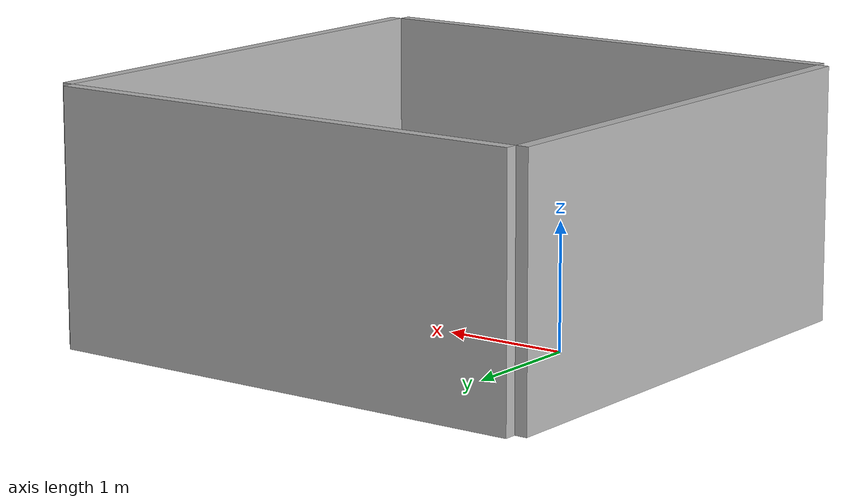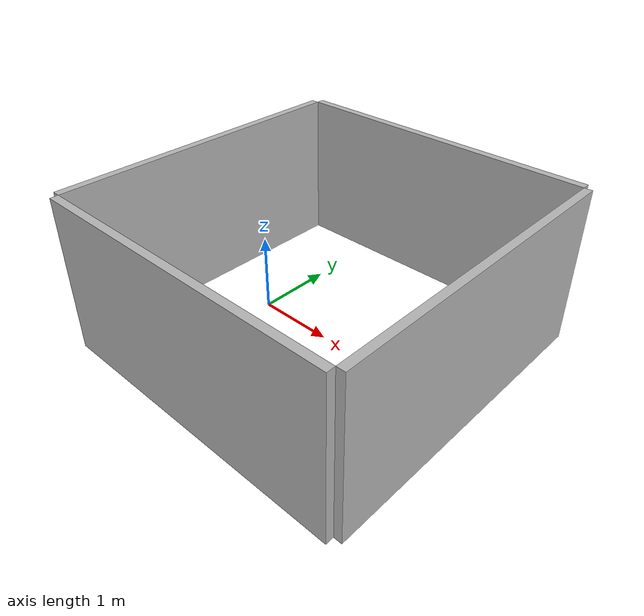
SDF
<?xml version="1.0"?>
<sdf version="1.7">
<world name="w">
<model name="aidan_world">
<static>true</static>
<link name="origin">
	<inertial>
		<mass>1.0</mass>
		<inertia>
			<ixx>1.0</ixx><ixy>0.0</ixy><ixz>0</ixz>
			<iyy>1.0</iyy><iyz>0.0</iyz><izz>1.0</izz>
		</inertia>
	</inertial>
	<visual name="b1">
		<pose>1.0 2.05 1.0 0.0 0.0 0.0</pose>
		<geometry>
			<box><size>4.0 0.1 2.0</size></box>
		</geometry>
	</visual>
	<collision name="b1">
		<pose>1.0 2.05 1.0 0.0 0.0 0.0</pose>
		<geometry>
			<box><size>4.0 0.1 2.0</size></box>
		</geometry>
	</collision>
	<visual name="b2">
		<pose>1.0 -2.05 1.0 0.0 0.0 0.0</pose>
		<geometry>
			<box><size>4.0 0.1 2.0</size></box>
		</geometry>
	</visual>
	<collision name="b2">
		<pose>1.0 -2.05 1.0 0.0 0.0 0.0</pose>
		<geometry>
			<box><size>4.0 0.1 2.0</size></box>
		</geometry>
	</collision>
	<visual name="b3">
		<pose>3.05 0.0 1.0 0.0 0.0 0.0</pose>
		<geometry>
			<box><size>0.1 4.0 2.0</size></box>
		</geometry>
	</visual>
	<collision name="b3">
		<pose>3.05 0.0 1.0 0.0 0.0 0.0</pose>
		<geometry>
			<box><size>0.1 4.0 2.0</size></box>
		</geometry>
	</collision>
	<visual name="b4">
		<pose>-1.05 0.0 1.0 0.0 0.0 0.0</pose>
		<geometry>
			<box><size>0.1 4.0 2.0</size></box>
		</geometry>
	</visual>
	<collision name="b4">
		<pose>-1.05 0.0 1.0 0.0 0.0 0.0</pose>
		<geometry>
			<box><size>0.1 4.0 2.0</size></box>
		</geometry>
	</collision>
</link>
</model>
</world>
</sdf>
